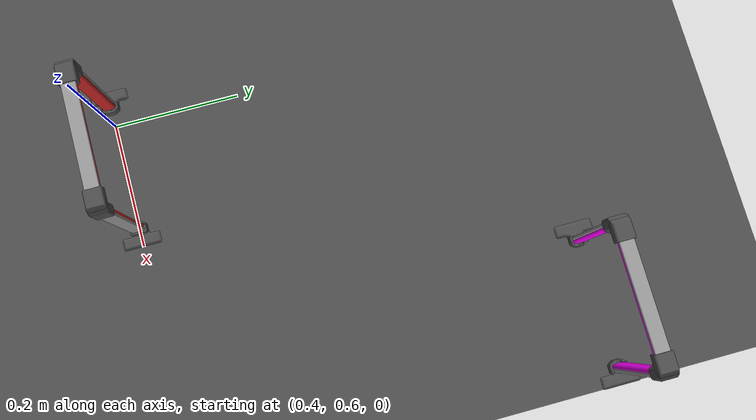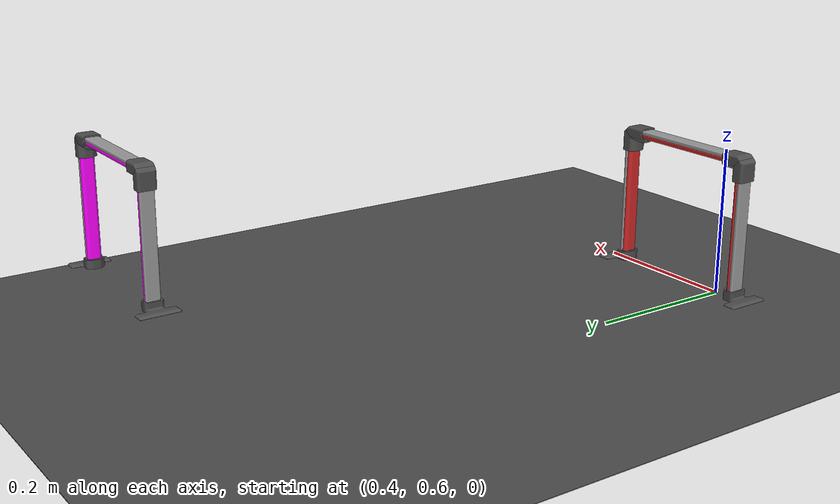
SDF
<sdf version="1.4">
 <world name="default">
  <include><pose>0.5 1.225 0 0 0 0</pose><uri>model://twister_table</uri></include>
  <scene>
   <ambient>0.05 0.05 0.05 1</ambient>
   <background>0.05 0.05 0.05 1</background>
   <shadows>true</shadows>
   <grid>false</grid>
   <origin_visual>false</origin_visual>
  </scene>
  <light name="sun1" type="directional">
   <pose>-3 -3 3 0 0 0</pose>
   <diffuse>0.3 0.3 0.3 1</diffuse>
   <specular>0.2 0.2 0.2 1</specular>
   <attenuation>
    <range>1000</range>
    <constant>0.9</constant>
    <linear>0.01</linear>
    <quadratic>0.001</quadratic>
   </attenuation>
   <direction>0.5 0.5 -0.7</direction>
  </light>
  <light name="sun2" type="directional">
   <pose>3 3 3 0 0 0</pose>
   <diffuse>0.3 0.3 0.3 1</diffuse>
   <specular>0.2 0.2 0.2 1</specular>
   <attenuation>
    <range>1000</range>
    <constant>0.9</constant>
    <linear>0.01</linear>
    <quadratic>0.001</quadratic>
   </attenuation>
   <direction>-0.5 -0.5 -0.7</direction>
  </light>
  <include><name>goal_2</name><pose>0.78 1.26 0 0 0 -1.5707</pose><uri>model://twister_goal_pink</uri></include>
  <include><name>goal_3</name><pose>0.38 0.6 0 0 0 -1.5707</pose><uri>model://twister_goal_red</uri></include>
 </world>
</sdf>

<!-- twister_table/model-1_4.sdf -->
<sdf version="1.4">
  <model name="twister_table">
    <static>true</static>
    <link name="link">
      <collision name="collision">
        <geometry>
          <plane>
            <normal>0 0 1</normal>
            <size>1.0 2.45</size>
          </plane>
        </geometry>
        <surface>
          <friction>
            <ode>
              <mu>100</mu>
              <mu2>50</mu2>
            </ode>
          </friction>
        </surface>
      </collision>
      <visual name="visual">
        <cast_shadows>false</cast_shadows>
        <geometry>
          <plane>
            <normal>0 0 1</normal>
            <size>1.0 2.45</size>
          </plane>
        </geometry>
        <material>
          <script>
            <uri>file://media/materials/scripts/gazebo.material</uri>
            <name>Gazebo/DarkGrey</name>
          </script>
        </material>
      </visual>
    </link>
  </model>
</sdf>

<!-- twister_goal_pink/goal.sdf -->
<sdf version="1.4">
  <model name="goal_pink">
    <pose>0 0 0 0 0 0</pose>
    <static>true</static>

    <link name="left_goal_foot">
      <visual name="visual">
        <pose>0 0 0 0 0 0</pose>
        <geometry>
          <mesh>
            <uri>model://twister_goal_pink/meshes/goal_foot.stl</uri>
          </mesh>
        </geometry>
        <material>
          <script>
            <uri>file://media/materials/scripts/gazebo.material</uri>
            <name>Gazebo/DarkGrey</name>
          </script>
        </material>
      </visual>
    </link>

    <link name="left_goal_post">
      <visual name="visual">
        <pose>0.0 -0.014 0.014 0 0 0</pose>
        <geometry>
          <mesh>
            <uri>model://twister_goal_pink/meshes/goal_post.stl</uri>
          </mesh>
        </geometry>
        <material>
          <script>
            <uri>file://media/materials/scripts/gazebo.material</uri>
            <name>Gazebo/Grey</name>
          </script>
        </material>
      </visual>
    </link>

    <link name="left_light">
      <visual name="visual">
        <pose>0.0 -0.008 0.014 0 0 0</pose>
        <geometry>
          <mesh>
            <uri>model://twister_goal_pink/meshes/goal_light.stl</uri>
          </mesh>
        </geometry>
        <material>
          <ambient>1 0 1 1</ambient>
          <diffuse>1 0 1 1</diffuse>
          <specular>0.1 0.1 0.1 1</specular>
          <emissive>1 0 1 1</emissive>
        </material>
      </visual>
    </link>

    <link name="left_bottom_angle">
        <pose>0 0 0.179 0 3.14159 0</pose>
      <visual name="visual">
        <geometry>
          <mesh>
            <uri>model://twister_goal_pink/meshes/goal_angle.stl</uri>
          </mesh>
        </geometry>
        <material>
          <script>
            <uri>file://media/materials/scripts/gazebo.material</uri>
            <name>Gazebo/DarkGrey</name>
          </script>
        </material>
      </visual>
    </link>

    <link name="left_top_angle">
        <pose>0 0 0.179 -1.5707 0 0</pose>
      <visual name="visual">
        <geometry>
          <mesh>
            <uri>model://twister_goal_pink/meshes/goal_angle.stl</uri>
          </mesh>
        </geometry>
        <material>
          <script>
            <uri>file://media/materials/scripts/gazebo.material</uri>
            <name>Gazebo/DarkGrey</name>
          </script>
        </material>
      </visual>
    </link>

    <link name="top_goal_post">
      <visual name="visual">
        <pose>0 0.015 0.194 -1.5707 0 0</pose>
        <geometry>
          <mesh>
            <uri>model://twister_goal_pink/meshes/goal_post.stl</uri>
          </mesh>
        </geometry>
        <material>
          <script>
            <uri>file://media/materials/scripts/gazebo.material</uri>
            <name>Gazebo/Grey</name>
          </script>
        </material>
      </visual>
    </link>

    <link name="top_light">
      <visual name="visual">
        <pose>0 0.015 0.188 -1.5707 0 0</pose>
        <geometry>
          <mesh>
            <uri>model://twister_goal_pink/meshes/goal_light.stl</uri>
          </mesh>
        </geometry>
        <material>
          <ambient>1 0 1 1</ambient>
          <diffuse>1 0 1 1</diffuse>
          <specular>0.1 0.1 0.1 1</specular>
          <emissive>1 0 1 1</emissive>
        </material>
      </visual>
    </link>

    <link name="right_top_angle">
      <visual name="visual">
        <pose>0 0.18 0.179 -1.5707 0 3.14159</pose>
        <geometry>
          <mesh>
            <uri>model://twister_goal_pink/meshes/goal_angle.stl</uri>
          </mesh>
        </geometry>
        <material>
          <script>
            <uri>file://media/materials/scripts/gazebo.material</uri>
            <name>Gazebo/DarkGrey</name>
          </script>
        </material>
      </visual>
    </link>

    <link name="right_bottom_angle">
      <visual name="visual">
        <pose>0 0.18 0.179 0 3.14159 3.14159</pose>
        <geometry>
          <mesh>
            <uri>model://twister_goal_pink/meshes/goal_angle.stl</uri>
          </mesh>
        </geometry>
        <material>
          <script>
            <uri>file://media/materials/scripts/gazebo.material</uri>
            <name>Gazebo/DarkGrey</name>
          </script>
        </material>
      </visual>
    </link>

    <link name="right_goal_post">
      <visual name="visual">
        <pose>0.0 0.195 0.014 0 0 3.14159</pose>
        <geometry>
          <mesh>
            <uri>model://twister_goal_pink/meshes/goal_post.stl</uri>
          </mesh>
        </geometry>
        <material>
          <script>
            <uri>file://media/materials/scripts/gazebo.material</uri>
            <name>Gazebo/Grey</name>
          </script>
        </material>
      </visual>
    </link>

    <link name="right_light">
      <visual name="visual">
        <pose>0.0 0.189 0.014 0 0 3.14159</pose>
        <geometry>
          <mesh>
            <uri>model://twister_goal_pink/meshes/goal_light.stl</uri>
          </mesh>
        </geometry>
        <material>
          <ambient>1 0 1 1</ambient>
          <diffuse>1 0 1 1</diffuse>
          <specular>0.1 0.1 0.1 1</specular>
          <emissive>1 0 1 1</emissive>
        </material>
      </visual>
    </link>

    <link name="right_goal_foot">
      <visual name="visual">
        <pose>0 0.181 0 0 0 3.14159</pose>
        <geometry>
          <mesh>
            <uri>model://twister_goal_pink/meshes/goal_foot.stl</uri>
          </mesh>
        </geometry>
        <material>
          <script>
            <uri>file://media/materials/scripts/gazebo.material</uri>
            <name>Gazebo/DarkGrey</name>
          </script>
        </material>
      </visual>
    </link>

  </model>
</sdf>

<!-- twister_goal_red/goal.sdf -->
<sdf version="1.4">
  <model name="goal_red">
    <pose>0 0 0 0 0 0</pose>
    <static>true</static>

    <link name="left_goal_foot">
      <visual name="visual">
        <pose>0 0 0 0 0 0</pose>
        <geometry>
          <mesh>
            <uri>model://twister_goal_red/meshes/goal_foot.stl</uri>
          </mesh>
        </geometry>
        <material>
          <script>
            <uri>file://media/materials/scripts/gazebo.material</uri>
            <name>Gazebo/DarkGrey</name>
          </script>
        </material>
      </visual>
    </link>

    <link name="left_goal_post">
      <visual name="visual">
        <pose>0.0 -0.014 0.014 0 0 0</pose>
        <geometry>
          <mesh>
            <uri>model://twister_goal_red/meshes/goal_post.stl</uri>
          </mesh>
        </geometry>
        <material>
          <script>
            <uri>file://media/materials/scripts/gazebo.material</uri>
            <name>Gazebo/Grey</name>
          </script>
        </material>
      </visual>
    </link>

    <link name="left_light">
      <visual name="visual">
        <pose>0.0 -0.008 0.014 0 0 0</pose>
        <geometry>
          <mesh>
            <uri>model://twister_goal_red/meshes/goal_light.stl</uri>
          </mesh>
        </geometry>
        <material>
          <script>
            <uri>file://media/materials/scripts/gazebo.material</uri>
            <name>Gazebo/RedGlow</name>
          </script>
        </material>
      </visual>
    </link>

    <link name="left_bottom_angle">
        <pose>0 0 0.179 0 3.14159 0</pose>
      <visual name="visual">
        <geometry>
          <mesh>
            <uri>model://twister_goal_red/meshes/goal_angle.stl</uri>
          </mesh>
        </geometry>
        <material>
          <script>
            <uri>file://media/materials/scripts/gazebo.material</uri>
            <name>Gazebo/DarkGrey</name>
          </script>
        </material>
      </visual>
    </link>

    <link name="left_top_angle">
        <pose>0 0 0.179 -1.5707 0 0</pose>
      <visual name="visual">
        <geometry>
          <mesh>
            <uri>model://twister_goal_red/meshes/goal_angle.stl</uri>
          </mesh>
        </geometry>
        <material>
          <script>
            <uri>file://media/materials/scripts/gazebo.material</uri>
            <name>Gazebo/DarkGrey</name>
          </script>
        </material>
      </visual>
    </link>

    <link name="top_goal_post">
      <visual name="visual">
        <pose>0 0.015 0.194 -1.5707 0 0</pose>
        <geometry>
          <mesh>
            <uri>model://twister_goal_red/meshes/goal_post.stl</uri>
          </mesh>
        </geometry>
        <material>
          <script>
            <uri>file://media/materials/scripts/gazebo.material</uri>
            <name>Gazebo/Grey</name>
          </script>
        </material>
      </visual>
    </link>

    <link name="top_light">
      <visual name="visual">
        <pose>0 0.015 0.188 -1.5707 0 0</pose>
        <geometry>
          <mesh>
            <uri>model://twister_goal_red/meshes/goal_light.stl</uri>
          </mesh>
        </geometry>
        <material>
          <script>
            <uri>file://media/materials/scripts/gazebo.material</uri>
            <name>Gazebo/RedGlow</name>
          </script>
        </material>
      </visual>
    </link>

    <link name="right_top_angle">
      <visual name="visual">
        <pose>0 0.18 0.179 -1.5707 0 3.14159</pose>
        <geometry>
          <mesh>
            <uri>model://twister_goal_red/meshes/goal_angle.stl</uri>
          </mesh>
        </geometry>
        <material>
          <script>
            <uri>file://media/materials/scripts/gazebo.material</uri>
            <name>Gazebo/DarkGrey</name>
          </script>
        </material>
      </visual>
    </link>

    <link name="right_bottom_angle">
      <visual name="visual">
        <pose>0 0.18 0.179 0 3.14159 3.14159</pose>
        <geometry>
          <mesh>
            <uri>model://twister_goal_red/meshes/goal_angle.stl</uri>
          </mesh>
        </geometry>
        <material>
          <script>
            <uri>file://media/materials/scripts/gazebo.material</uri>
            <name>Gazebo/DarkGrey</name>
          </script>
        </material>
      </visual>
    </link>

    <link name="right_goal_post">
      <visual name="visual">
        <pose>0.0 0.195 0.014 0 0 3.14159</pose>
        <geometry>
          <mesh>
            <uri>model://twister_goal_red/meshes/goal_post.stl</uri>
          </mesh>
        </geometry>
        <material>
          <script>
            <uri>file://media/materials/scripts/gazebo.material</uri>
            <name>Gazebo/Grey</name>
          </script>
        </material>
      </visual>
    </link>

    <link name="right_light">
      <visual name="visual">
        <pose>0.0 0.189 0.014 0 0 3.14159</pose>
        <geometry>
          <mesh>
            <uri>model://twister_goal_red/meshes/goal_light.stl</uri>
          </mesh>
        </geometry>
        <material>
          <script>
            <uri>file://media/materials/scripts/gazebo.material</uri>
            <name>Gazebo/RedGlow</name>
          </script>
        </material>
      </visual>
    </link>

    <link name="right_goal_foot">
      <visual name="visual">
        <pose>0 0.181 0 0 0 3.14159</pose>
        <geometry>
          <mesh>
            <uri>model://twister_goal_red/meshes/goal_foot.stl</uri>
          </mesh>
        </geometry>
        <material>
          <script>
            <uri>file://media/materials/scripts/gazebo.material</uri>
            <name>Gazebo/DarkGrey</name>
          </script>
        </material>
      </visual>
    </link>

  </model>
</sdf>
